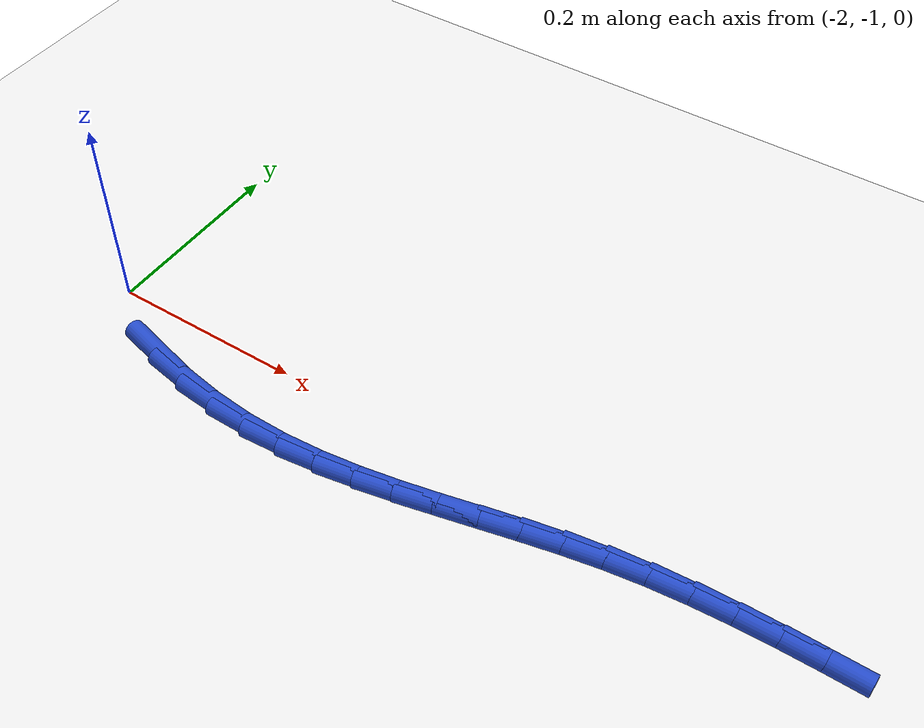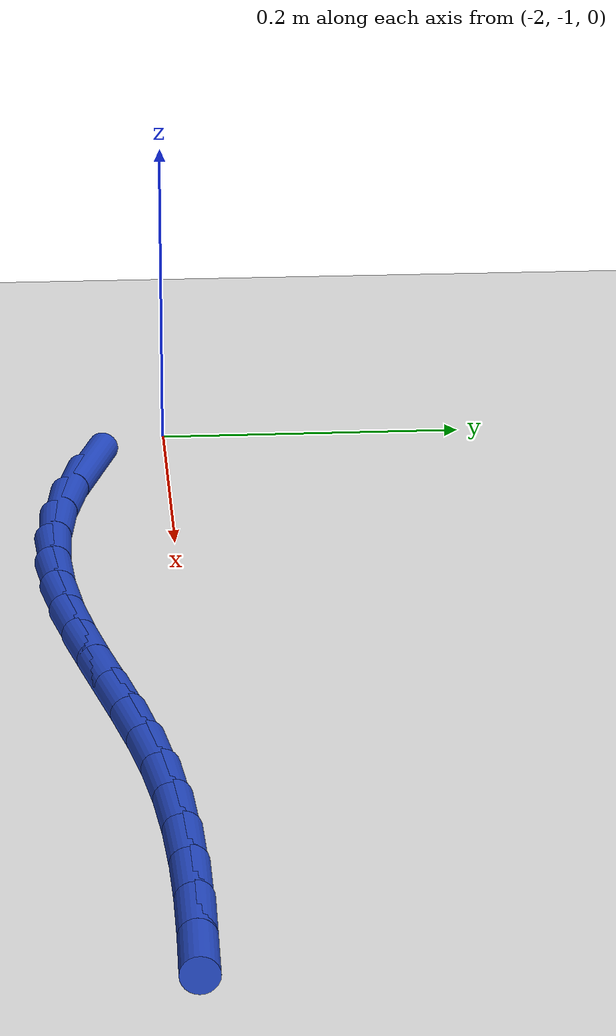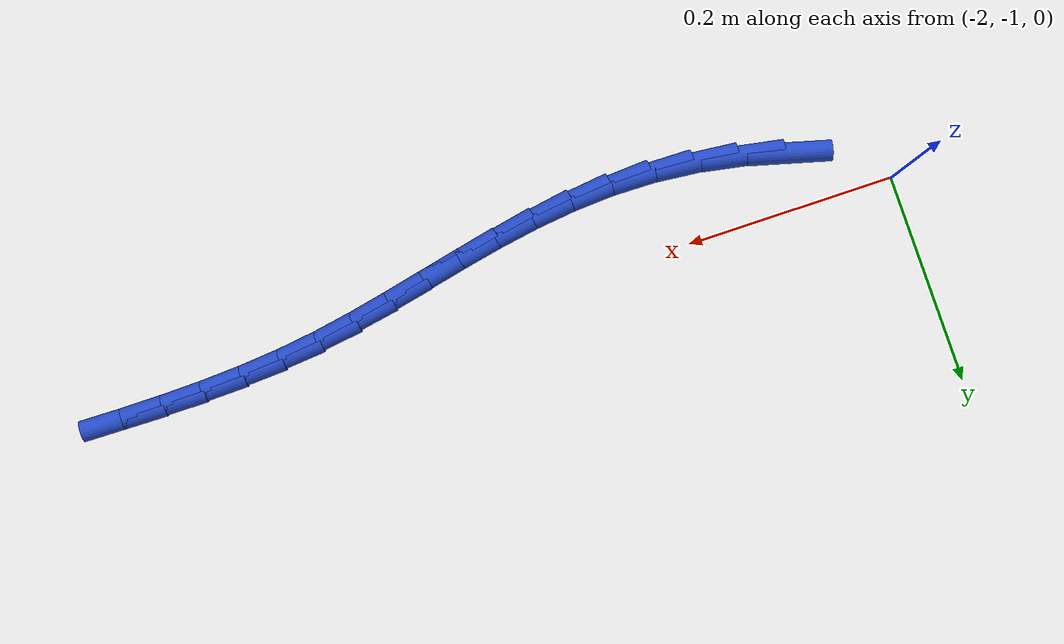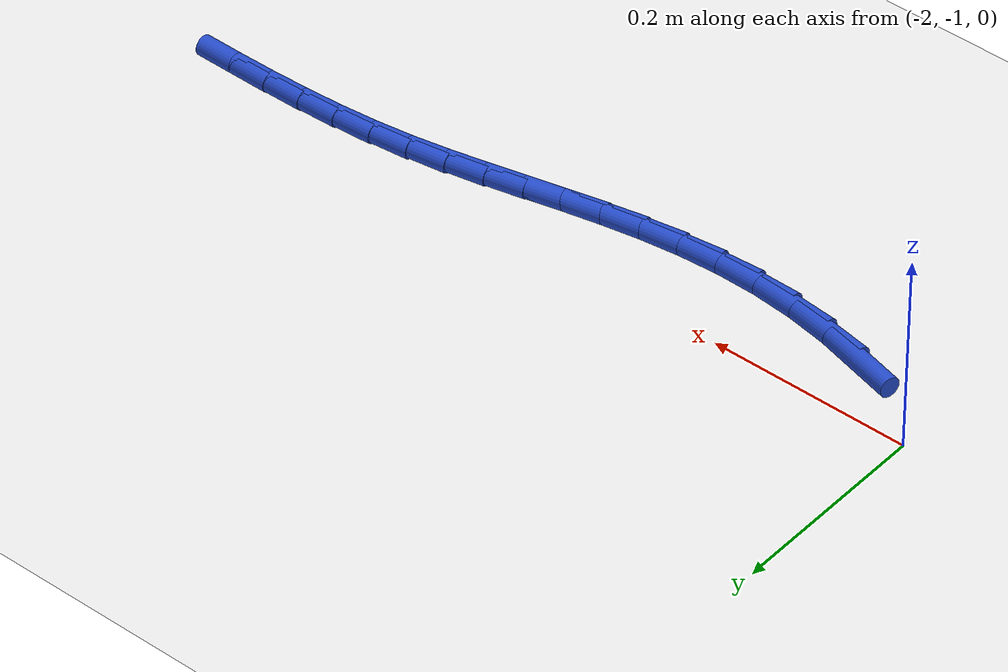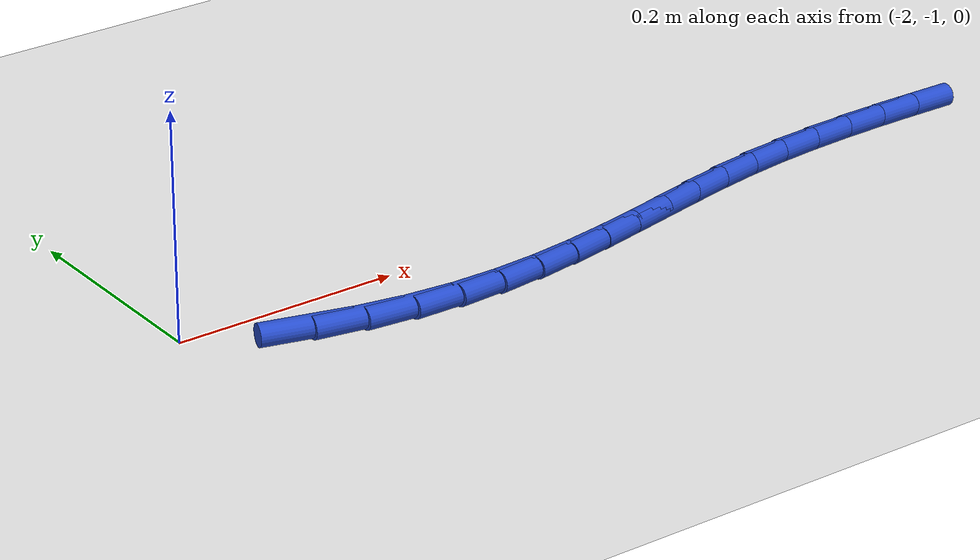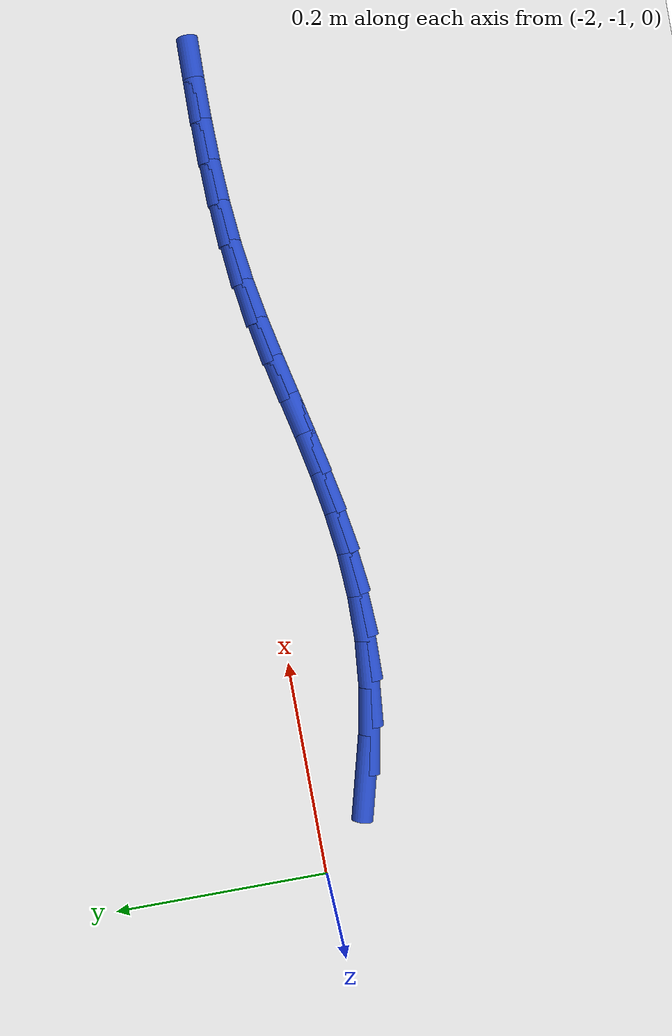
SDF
<sdf version="1.6">
 <world name="default">
  <model name="ground_plane">
   <static>1</static>
   <link name="link">
    <collision name="collision">
     <geometry><plane><normal>0 0 1</normal><size>100 100</size></plane></geometry>
     <surface><friction><ode><mu>100</mu><mu2>50</mu2></ode></friction></surface>
    </collision>
    <visual name="visual">
     <cast_shadows>0</cast_shadows>
     <geometry><plane><normal>0 0 1</normal><size>100 100</size></plane></geometry>
     <material>
      <script><uri>file://media/materials/scripts/gazebo.material</uri><name>Gazebo/WhiteGlow</name></script>
     </material>
    </visual>
   </link>
  </model>
  <model name="line">
   <link name="link_145">
    <pose>-1.9149498597966395 -1.051463379723372 0.01 0 1.57 -0.2584342501313266</pose>
    <collision name="collision">
     <geometry><cylinder><radius>0.01</radius><length>0.08</length></cylinder></geometry>
    </collision>
    <visual name="visual">
     <material>
      <script><name>Gazebo/Blue</name><uri>file://media/materials/scripts/gazebo.material</uri></script>
     </material>
     <geometry><cylinder><radius>0.01</radius><length>0.08</length></cylinder></geometry>
    </visual>
   </link>
   <link name="link_146">
    <pose>-1.8725172974698554 -1.0626802444516135 0.01 0 1.57 -0.17537032975091432</pose>
    <collision name="collision">
     <geometry><cylinder><radius>0.01</radius><length>0.08</length></cylinder></geometry>
    </collision>
    <visual name="visual">
     <material>
      <script><name>Gazebo/Blue</name><uri>file://media/materials/scripts/gazebo.material</uri></script>
     </material>
     <geometry><cylinder><radius>0.01</radius><length>0.08</length></cylinder></geometry>
    </visual>
   </link>
   <link name="link_147">
    <pose>-1.8295968260331514 -1.0702853463440813 0.01 0 1.57 -0.09313042915414235</pose>
    <collision name="collision">
     <geometry><cylinder><radius>0.01</radius><length>0.08</length></cylinder></geometry>
    </collision>
    <visual name="visual">
     <material>
      <script><name>Gazebo/Blue</name><uri>file://media/materials/scripts/gazebo.material</uri></script>
     </material>
     <geometry><cylinder><radius>0.01</radius><length>0.08</length></cylinder></geometry>
    </visual>
   </link>
   <link name="link_148">
    <pose>-1.7873583635237429 -1.0742304447282747 0.01 0 1.57 -0.011880532574085353</pose>
    <collision name="collision">
     <geometry><cylinder><radius>0.01</radius><length>0.08</length></cylinder></geometry>
    </collision>
    <visual name="visual">
     <material>
      <script><name>Gazebo/Blue</name><uri>file://media/materials/scripts/gazebo.material</uri></script>
     </material>
     <geometry><cylinder><radius>0.01</radius><length>0.08</length></cylinder></geometry>
    </visual>
   </link>
   <link name="link_149">
    <pose>-1.7464215397365976 -1.074716818880399 0.01 0 1.57 0.06086269276127349</pose>
    <collision name="collision">
     <geometry><cylinder><radius>0.01</radius><length>0.08</length></cylinder></geometry>
    </collision>
    <visual name="visual">
     <material>
      <script><name>Gazebo/Blue</name><uri>file://media/materials/scripts/gazebo.material</uri></script>
     </material>
     <geometry><cylinder><radius>0.01</radius><length>0.08</length></cylinder></geometry>
    </visual>
   </link>
   <link name="link_150">
    <pose>-1.706640892415379 -1.0722926675903581 0.01 0 1.57 0.12200967214895074</pose>
    <collision name="collision">
     <geometry><cylinder><radius>0.01</radius><length>0.08</length></cylinder></geometry>
    </collision>
    <visual name="visual">
     <material>
      <script><name>Gazebo/Blue</name><uri>file://media/materials/scripts/gazebo.material</uri></script>
     </material>
     <geometry><cylinder><radius>0.01</radius><length>0.08</length></cylinder></geometry>
    </visual>
   </link>
   <link name="link_151">
    <pose>-1.6678144400104589 -1.0675318174737674 0.01 0 1.57 0.1696943275155687</pose>
    <collision name="collision">
     <geometry><cylinder><radius>0.01</radius><length>0.08</length></cylinder></geometry>
    </collision>
    <visual name="visual">
     <material>
      <script><name>Gazebo/Blue</name><uri>file://media/materials/scripts/gazebo.material</uri></script>
     </material>
     <geometry><cylinder><radius>0.01</radius><length>0.08</length></cylinder></geometry>
    </visual>
   </link>
   <link name="link_152">
    <pose>-1.6297402009722088 -1.061008095146244 0.01 0 1.57 0.2027188980158343</pose>
    <collision name="collision">
     <geometry><cylinder><radius>0.01</radius><length>0.08</length></cylinder></geometry>
    </collision>
    <visual name="visual">
     <material>
      <script><name>Gazebo/Blue</name><uri>file://media/materials/scripts/gazebo.material</uri></script>
     </material>
     <geometry><cylinder><radius>0.01</radius><length>0.08</length></cylinder></geometry>
    </visual>
   </link>
   <link name="link_153">
    <pose>-1.5922161937509987 -1.0532953272234018 0.01 0 1.57 0.22037823699769293</pose>
    <collision name="collision">
     <geometry><cylinder><radius>0.01</radius><length>0.08</length></cylinder></geometry>
    </collision>
    <visual name="visual">
     <material>
      <script><name>Gazebo/Blue</name><uri>file://media/materials/scripts/gazebo.material</uri></script>
     </material>
     <geometry><cylinder><radius>0.01</radius><length>0.08</length></cylinder></geometry>
    </visual>
   </link>
   <link name="link_154">
    <pose>-1.5550404367971997 -1.0449673403208581 0.01 0 1.57 0.22228442130255874</pose>
    <collision name="collision">
     <geometry><cylinder><radius>0.01</radius><length>0.08</length></cylinder></geometry>
    </collision>
    <visual name="visual">
     <material>
      <script><name>Gazebo/Blue</name><uri>file://media/materials/scripts/gazebo.material</uri></script>
     </material>
     <geometry><cylinder><radius>0.01</radius><length>0.08</length></cylinder></geometry>
    </visual>
   </link>
   <link name="link_155">
    <pose>-1.5180109485611828 -1.0365979610542277 0.01 0 1.57 0.20825869433313252</pose>
    <collision name="collision">
     <geometry><cylinder><radius>0.01</radius><length>0.08</length></cylinder></geometry>
    </collision>
    <visual name="visual">
     <material>
      <script><name>Gazebo/Blue</name><uri>file://media/materials/scripts/gazebo.material</uri></script>
     </material>
     <geometry><cylinder><radius>0.01</radius><length>0.08</length></cylinder></geometry>
    </visual>
   </link>
   <link name="link_156">
    <pose>-1.4809257474933186 -1.028761016039127 0.01 0 1.57 0.17832541396909937</pose>
    <collision name="collision">
     <geometry><cylinder><radius>0.01</radius><length>0.08</length></cylinder></geometry>
    </collision>
    <visual name="visual">
     <material>
      <script><name>Gazebo/Blue</name><uri>file://media/materials/scripts/gazebo.material</uri></script>
     </material>
     <geometry><cylinder><radius>0.01</radius><length>0.08</length></cylinder></geometry>
    </visual>
   </link>
   <link name="link_157">
    <pose>-1.4435828520439777 -1.0220303318911717 0.01 0 1.57 0.13432968641329138</pose>
    <collision name="collision">
     <geometry><cylinder><radius>0.01</radius><length>0.08</length></cylinder></geometry>
    </collision>
    <visual name="visual">
     <material>
      <script><name>Gazebo/Blue</name><uri>file://media/materials/scripts/gazebo.material</uri></script>
     </material>
     <geometry><cylinder><radius>0.01</radius><length>0.08</length></cylinder></geometry>
    </visual>
   </link>
   <link name="link_158">
    <pose>-1.4058001683486896 -1.0169242466376316 0.01 0 1.57 0.09035328619702811</pose>
    <collision name="collision">
     <geometry><cylinder><radius>0.01</radius><length>0.08</length></cylinder></geometry>
    </collision>
    <visual name="visual">
     <material>
      <script><name>Gazebo/Blue</name><uri>file://media/materials/scripts/gazebo.material</uri></script>
     </material>
     <geometry><cylinder><radius>0.01</radius><length>0.08</length></cylinder></geometry>
    </visual>
   </link>
   <link name="link_159">
    <pose>-1.3675748313263743 -1.0134610324558484 0.01 0 1.57 0.053531184586494716</pose>
    <collision name="collision">
     <geometry><cylinder><radius>0.01</radius><length>0.08</length></cylinder></geometry>
    </collision>
    <visual name="visual">
     <material>
      <script><name>Gazebo/Blue</name><uri>file://media/materials/scripts/gazebo.material</uri></script>
     </material>
     <geometry><cylinder><radius>0.01</radius><length>0.08</length></cylinder></geometry>
    </visual>
   </link>
   <link name="link_160">
    <pose>-1.3289989251727652 -1.011394043746505 0.01 0 1.57 0.023682070028152626</pose>
    <collision name="collision">
     <geometry><cylinder><radius>0.01</radius><length>0.08</length></cylinder></geometry>
    </collision>
    <visual name="visual">
     <material>
      <script><name>Gazebo/Blue</name><uri>file://media/materials/scripts/gazebo.material</uri></script>
     </material>
     <geometry><cylinder><radius>0.01</radius><length>0.08</length></cylinder></geometry>
    </visual>
   </link>
   <link name="link_161">
    <pose>-1.2901654019193327 -1.0104742135636258 0.01 0 1.57 0.000557425897842714</pose>
    <collision name="collision">
     <geometry><cylinder><radius>0.01</radius><length>0.08</length></cylinder></geometry>
    </collision>
    <visual name="visual">
     <material>
      <script><name>Gazebo/Blue</name><uri>file://media/materials/scripts/gazebo.material</uri></script>
     </material>
     <geometry><cylinder><radius>0.01</radius><length>0.08</length></cylinder></geometry>
    </visual>
   </link>
   <link name="link_162">
    <pose>-1.25116721359755 -1.0104524749612347 0.01 0 1.57 -0.016054100941412894</pose>
    <collision name="collision">
     <geometry><cylinder><radius>0.01</radius><length>0.08</length></cylinder></geometry>
    </collision>
    <visual name="visual">
     <material>
      <script><name>Gazebo/Blue</name><uri>file://media/materials/scripts/gazebo.material</uri></script>
     </material>
     <geometry><cylinder><radius>0.01</radius><length>0.08</length></cylinder></geometry>
    </visual>
   </link>
  </model>
 </world>
</sdf>
